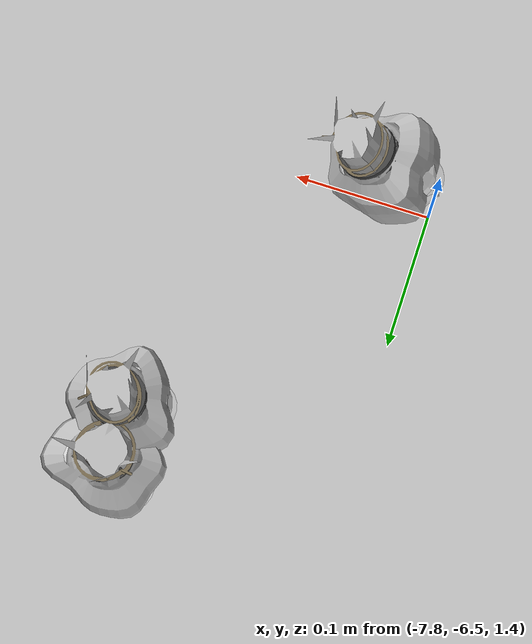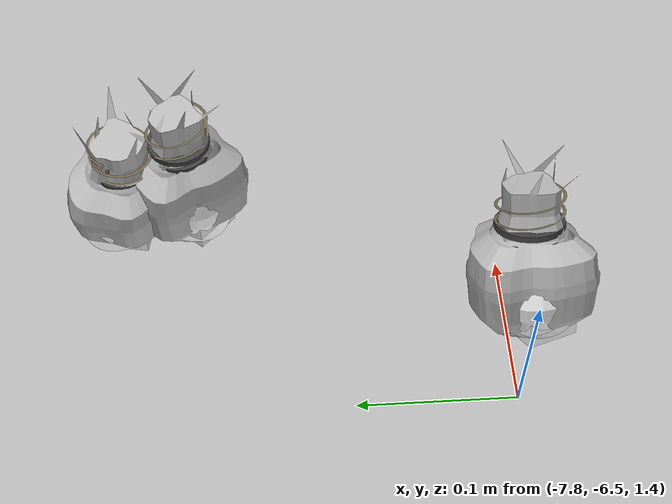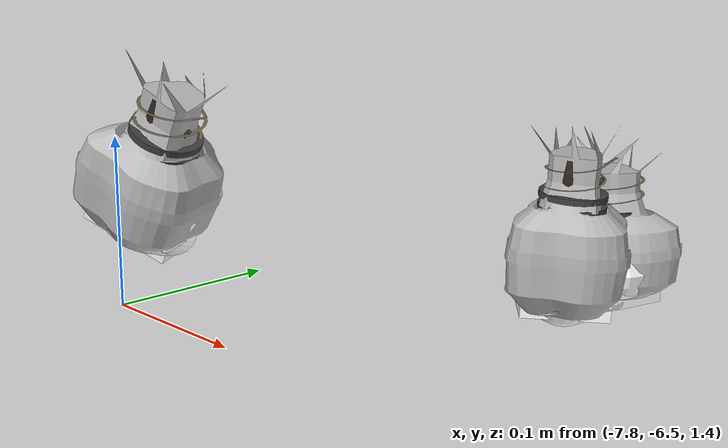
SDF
<sdf version="1.11">
 <world name="peach_orchard">
  <model name="ground">
   <static>true</static>
   <link name="link">
    <visual name="soil">
     <geometry><plane><normal>0 0 1</normal><size>32 22</size></plane></geometry>
     <material>
      <ambient>1 1 1 1</ambient>
      <diffuse>1 1 1 1</diffuse>
      <specular>0.1 0.1 0.1 1</specular>
      <pbr>
       <metal>
        <albedo_map>textures/soil_albedo.png</albedo_map>
        <normal_map type="tangent">textures/soil_normal.png</normal_map>
        <roughness>0.95</roughness>
        <metalness>0</metalness>
       </metal>
      </pbr>
     </material>
    </visual>
    <collision name="c_soil">
     <geometry><plane><normal>0 0 1</normal><size>32 22</size></plane></geometry>
    </collision>
   </link>
  </model>
  <model name="peach_tree_r0_t0_00">
   <pose>-7.63848 -6.29787 1.38853 0 0.0690625 0.471395</pose>
   <static>true</static>
   <link name="bag">
    <visual name="bag_mesh">
     <pose>0 0 0.0492364 0 0 0</pose>
     <geometry>
      <mesh><uri>model://peach_sim/meshes/bagged_peach.glb</uri><scale>0.923249 1.09589 1.11901</scale></mesh>
     </geometry>
    </visual>
    <visual name="body">
     <pose>0 0 0.0312364 0 0 0</pose>
     <geometry><ellipsoid><radii>0.0346218 0.028493 0.0337353</radii></ellipsoid></geometry>
     <material>
      <ambient>1 1 1 1</ambient>
      <diffuse>1 1 1 1</diffuse>
      <specular>0.1 0.1 0.1 1</specular>
      <pbr>
       <metal>
        <albedo_map>textures/paper_bag_albedo.png</albedo_map>
        <normal_map type="tangent">textures/paper_bag_normal.png</normal_map>
        <roughness>0.72</roughness>
        <metalness>0</metalness>
       </metal>
      </pbr>
     </material>
    </visual>
    <visual name="bottom_fold">
     <pose>0 0 0.012 0 0 0.35</pose>
     <geometry><box><size>0.0536639 0.032767 0.022</size></box></geometry>
     <material>
      <ambient>1 1 1 1</ambient>
      <diffuse>1 1 1 1</diffuse>
      <specular>0.1 0.1 0.1 1</specular>
      <pbr>
       <metal>
        <albedo_map>textures/paper_bag_albedo.png</albedo_map>
        <normal_map type="tangent">textures/paper_bag_normal.png</normal_map>
        <roughness>0.8</roughness>
        <metalness>0</metalness>
       </metal>
      </pbr>
     </material>
    </visual>
    <visual name="fruit">
     <pose>0 0 0.0190603 0 0 0</pose>
     <geometry><sphere><radius>0.0260627</radius></sphere></geometry>
     <material>
      <ambient>1 1 1 1</ambient>
      <diffuse>1 1 1 1</diffuse>
      <specular>0.1 0.1 0.1 1</specular>
      <pbr>
       <metal>
        <albedo_map>textures/fruit_skin_albedo.png</albedo_map>
        <normal_map type="tangent">textures/fruit_skin_normal.png</normal_map>
        <roughness>0.55</roughness>
        <metalness>0</metalness>
       </metal>
      </pbr>
     </material>
    </visual>
    <visual name="neck">
     <pose>0 0 0.0714728 0 0 0</pose>
     <geometry><cylinder><radius>0.013</radius><length>0.018</length></cylinder></geometry>
     <material>
      <ambient>1 1 1 1</ambient>
      <diffuse>1 1 1 1</diffuse>
      <specular>0.1 0.1 0.1 1</specular>
      <pbr>
       <metal>
        <albedo_map>textures/paper_bag_albedo.png</albedo_map>
        <normal_map type="tangent">textures/paper_bag_normal.png</normal_map>
        <roughness>0.75</roughness>
        <metalness>0</metalness>
       </metal>
      </pbr>
     </material>
    </visual>
    <visual name="gather">
     <pose>0 0 0.0524728 0 0 0</pose>
     <geometry><cylinder><radius>0.019</radius><length>0.02</length></cylinder></geometry>
     <material>
      <ambient>1 1 1 1</ambient>
      <diffuse>1 1 1 1</diffuse>
      <specular>0.1 0.1 0.1 1</specular>
      <pbr>
       <metal>
        <albedo_map>textures/paper_bag_albedo.png</albedo_map>
        <normal_map type="tangent">textures/paper_bag_normal.png</normal_map>
        <roughness>0.8</roughness>
        <metalness>0</metalness>
       </metal>
      </pbr>
     </material>
    </visual>
    <visual name="inner_paper">
     <pose>0 0 0.0764728 0 0 0</pose>
     <geometry><cylinder><radius>0.01</radius><length>0.008</length></cylinder></geometry>
     <material>
      <ambient>0.180392 0.14902 0.133333 1</ambient>
      <diffuse>0.180392 0.14902 0.133333 1</diffuse>
      <specular>0.1 0.1 0.1 1</specular>
     </material>
    </visual>
    <visual name="wire_0">
     <pose>0 0 0.0664728 0 0 0</pose>
     <geometry><cylinder><radius>0.0205</radius><length>0.0035</length></cylinder></geometry>
     <material>
      <ambient>0.25 0.25 0.25 1</ambient>
      <diffuse>0.25 0.25 0.25 1</diffuse>
      <specular>0.1 0.1 0.1 1</specular>
     </material>
    </visual>
    <visual name="wire_1">
     <pose>0 0 0.0734728 0 0 0</pose>
     <geometry><cylinder><radius>0.0205</radius><length>0.0035</length></cylinder></geometry>
     <material>
      <ambient>0.25 0.25 0.25 1</ambient>
      <diffuse>0.25 0.25 0.25 1</diffuse>
      <specular>0.1 0.1 0.1 1</specular>
     </material>
    </visual>
    <visual name="wire_tail">
     <pose>0.01 0 0.0744728 0 0.521618 0</pose>
     <geometry><cylinder><radius>0.0012</radius><length>0.026</length></cylinder></geometry>
     <material>
      <ambient>0.25 0.25 0.25 1</ambient>
      <diffuse>0.25 0.25 0.25 1</diffuse>
      <specular>0.1 0.1 0.1 1</specular>
     </material>
    </visual>
    <collision name="c_body">
     <pose>0 0 0.0312364 0 0 0</pose>
     <geometry><cylinder><radius>0.0346218</radius><length>0.0624728</length></cylinder></geometry>
    </collision>
   </link>
  </model>
  <model name="peach_tree_r0_t0_01">
   <pose>-7.63671 -6.25862 1.39125 0 0.0242443 2.61156</pose>
   <static>true</static>
   <link name="bag">
    <visual name="bag_mesh">
     <pose>0 0 0.0396384 0 0 0</pose>
     <geometry>
      <mesh><uri>model://peach_sim/meshes/bagged_peach.glb</uri><scale>1.03772 1.12838 0.900873</scale></mesh>
     </geometry>
    </visual>
    <visual name="body">
     <pose>0 0 0.0216384 0 0 0</pose>
     <geometry><ellipsoid><radii>0.0389145 0.0293378 0.0233695</radii></ellipsoid></geometry>
     <material>
      <ambient>1 1 1 1</ambient>
      <diffuse>1 1 1 1</diffuse>
      <specular>0.1 0.1 0.1 1</specular>
      <pbr>
       <metal>
        <albedo_map>textures/paper_bag_albedo.png</albedo_map>
        <normal_map type="tangent">textures/paper_bag_normal.png</normal_map>
        <roughness>0.72</roughness>
        <metalness>0</metalness>
       </metal>
      </pbr>
     </material>
    </visual>
    <visual name="bottom_fold">
     <pose>0 0 0.012 0 0 0.35</pose>
     <geometry><box><size>0.0603175 0.0337385 0.022</size></box></geometry>
     <material>
      <ambient>1 1 1 1</ambient>
      <diffuse>1 1 1 1</diffuse>
      <specular>0.1 0.1 0.1 1</specular>
      <pbr>
       <metal>
        <albedo_map>textures/paper_bag_albedo.png</albedo_map>
        <normal_map type="tangent">textures/paper_bag_normal.png</normal_map>
        <roughness>0.8</roughness>
        <metalness>0</metalness>
       </metal>
      </pbr>
     </material>
    </visual>
    <visual name="fruit">
     <pose>0 0 0.0184015 0 0 0</pose>
     <geometry><sphere><radius>0.0253775</radius></sphere></geometry>
     <material>
      <ambient>1 1 1 1</ambient>
      <diffuse>1 1 1 1</diffuse>
      <specular>0.1 0.1 0.1 1</specular>
      <pbr>
       <metal>
        <albedo_map>textures/fruit_skin_albedo.png</albedo_map>
        <normal_map type="tangent">textures/fruit_skin_normal.png</normal_map>
        <roughness>0.55</roughness>
        <metalness>0</metalness>
       </metal>
      </pbr>
     </material>
    </visual>
    <visual name="neck">
     <pose>0 0 0.0522768 0 0 0</pose>
     <geometry><cylinder><radius>0.013</radius><length>0.018</length></cylinder></geometry>
     <material>
      <ambient>1 1 1 1</ambient>
      <diffuse>1 1 1 1</diffuse>
      <specular>0.1 0.1 0.1 1</specular>
      <pbr>
       <metal>
        <albedo_map>textures/paper_bag_albedo.png</albedo_map>
        <normal_map type="tangent">textures/paper_bag_normal.png</normal_map>
        <roughness>0.75</roughness>
        <metalness>0</metalness>
       </metal>
      </pbr>
     </material>
    </visual>
    <visual name="gather">
     <pose>0 0 0.0332768 0 0 0</pose>
     <geometry><cylinder><radius>0.019</radius><length>0.02</length></cylinder></geometry>
     <material>
      <ambient>1 1 1 1</ambient>
      <diffuse>1 1 1 1</diffuse>
      <specular>0.1 0.1 0.1 1</specular>
      <pbr>
       <metal>
        <albedo_map>textures/paper_bag_albedo.png</albedo_map>
        <normal_map type="tangent">textures/paper_bag_normal.png</normal_map>
        <roughness>0.8</roughness>
        <metalness>0</metalness>
       </metal>
      </pbr>
     </material>
    </visual>
    <visual name="inner_paper">
     <pose>0 0 0.0572768 0 0 0</pose>
     <geometry><cylinder><radius>0.01</radius><length>0.008</length></cylinder></geometry>
     <material>
      <ambient>0.180392 0.14902 0.133333 1</ambient>
      <diffuse>0.180392 0.14902 0.133333 1</diffuse>
      <specular>0.1 0.1 0.1 1</specular>
     </material>
    </visual>
    <visual name="wire_0">
     <pose>0 0 0.0472768 0 0 0</pose>
     <geometry><cylinder><radius>0.0205</radius><length>0.0035</length></cylinder></geometry>
     <material>
      <ambient>0.25 0.25 0.25 1</ambient>
      <diffuse>0.25 0.25 0.25 1</diffuse>
      <specular>0.1 0.1 0.1 1</specular>
     </material>
    </visual>
    <visual name="wire_1">
     <pose>0 0 0.0542768 0 0 0</pose>
     <geometry><cylinder><radius>0.0205</radius><length>0.0035</length></cylinder></geometry>
     <material>
      <ambient>0.25 0.25 0.25 1</ambient>
      <diffuse>0.25 0.25 0.25 1</diffuse>
      <specular>0.1 0.1 0.1 1</specular>
     </material>
    </visual>
    <visual name="wire_tail">
     <pose>0.01 0 0.0552768 0 0.521618 0</pose>
     <geometry><cylinder><radius>0.0012</radius><length>0.026</length></cylinder></geometry>
     <material>
      <ambient>0.25 0.25 0.25 1</ambient>
      <diffuse>0.25 0.25 0.25 1</diffuse>
      <specular>0.1 0.1 0.1 1</specular>
     </material>
    </visual>
    <collision name="c_body">
     <pose>0 0 0.0216384 0 0 0</pose>
     <geometry><cylinder><radius>0.0389145</radius><length>0.0432768</length></cylinder></geometry>
    </collision>
   </link>
  </model>
  <model name="peach_tree_r0_t0_08">
   <pose>-7.77529 -6.50277 1.45 0 0.445973 0.0605916</pose>
   <static>true</static>
   <link name="bag">
    <visual name="bag_mesh">
     <pose>0 0 0.0454449 0 0 0</pose>
     <geometry>
      <mesh><uri>model://peach_sim/meshes/bagged_peach.glb</uri><scale>0.927256 1.06211 1.03284</scale></mesh>
     </geometry>
    </visual>
    <visual name="body">
     <pose>0 0 0.0274449 0 0 0</pose>
     <geometry><ellipsoid><radii>0.0347721 0.0276148 0.0296405</radii></ellipsoid></geometry>
     <material>
      <ambient>1 1 1 1</ambient>
      <diffuse>1 1 1 1</diffuse>
      <specular>0.1 0.1 0.1 1</specular>
      <pbr>
       <metal>
        <albedo_map>textures/paper_bag_albedo.png</albedo_map>
        <normal_map type="tangent">textures/paper_bag_normal.png</normal_map>
        <roughness>0.72</roughness>
        <metalness>0</metalness>
       </metal>
      </pbr>
     </material>
    </visual>
    <visual name="bottom_fold">
     <pose>0 0 0.012 0 0 0.35</pose>
     <geometry><box><size>0.0538967 0.031757 0.022</size></box></geometry>
     <material>
      <ambient>1 1 1 1</ambient>
      <diffuse>1 1 1 1</diffuse>
      <specular>0.1 0.1 0.1 1</specular>
      <pbr>
       <metal>
        <albedo_map>textures/paper_bag_albedo.png</albedo_map>
        <normal_map type="tangent">textures/paper_bag_normal.png</normal_map>
        <roughness>0.8</roughness>
        <metalness>0</metalness>
       </metal>
      </pbr>
     </material>
    </visual>
    <visual name="fruit">
     <pose>0 0 0.0202554 0 0 0</pose>
     <geometry><sphere><radius>0.0273056</radius></sphere></geometry>
     <material>
      <ambient>1 1 1 1</ambient>
      <diffuse>1 1 1 1</diffuse>
      <specular>0.1 0.1 0.1 1</specular>
      <pbr>
       <metal>
        <albedo_map>textures/fruit_skin_albedo.png</albedo_map>
        <normal_map type="tangent">textures/fruit_skin_normal.png</normal_map>
        <roughness>0.55</roughness>
        <metalness>0</metalness>
       </metal>
      </pbr>
     </material>
    </visual>
    <visual name="neck">
     <pose>0 0 0.0638898 0 0 0</pose>
     <geometry><cylinder><radius>0.013</radius><length>0.018</length></cylinder></geometry>
     <material>
      <ambient>1 1 1 1</ambient>
      <diffuse>1 1 1 1</diffuse>
      <specular>0.1 0.1 0.1 1</specular>
      <pbr>
       <metal>
        <albedo_map>textures/paper_bag_albedo.png</albedo_map>
        <normal_map type="tangent">textures/paper_bag_normal.png</normal_map>
        <roughness>0.75</roughness>
        <metalness>0</metalness>
       </metal>
      </pbr>
     </material>
    </visual>
    <visual name="gather">
     <pose>0 0 0.0448898 0 0 0</pose>
     <geometry><cylinder><radius>0.019</radius><length>0.02</length></cylinder></geometry>
     <material>
      <ambient>1 1 1 1</ambient>
      <diffuse>1 1 1 1</diffuse>
      <specular>0.1 0.1 0.1 1</specular>
      <pbr>
       <metal>
        <albedo_map>textures/paper_bag_albedo.png</albedo_map>
        <normal_map type="tangent">textures/paper_bag_normal.png</normal_map>
        <roughness>0.8</roughness>
        <metalness>0</metalness>
       </metal>
      </pbr>
     </material>
    </visual>
    <visual name="inner_paper">
     <pose>0 0 0.0688898 0 0 0</pose>
     <geometry><cylinder><radius>0.01</radius><length>0.008</length></cylinder></geometry>
     <material>
      <ambient>0.180392 0.14902 0.133333 1</ambient>
      <diffuse>0.180392 0.14902 0.133333 1</diffuse>
      <specular>0.1 0.1 0.1 1</specular>
     </material>
    </visual>
    <visual name="wire_0">
     <pose>0 0 0.0588898 0 0 0</pose>
     <geometry><cylinder><radius>0.0205</radius><length>0.0035</length></cylinder></geometry>
     <material>
      <ambient>0.25 0.25 0.25 1</ambient>
      <diffuse>0.25 0.25 0.25 1</diffuse>
      <specular>0.1 0.1 0.1 1</specular>
     </material>
    </visual>
    <visual name="wire_1">
     <pose>0 0 0.0658898 0 0 0</pose>
     <geometry><cylinder><radius>0.0205</radius><length>0.0035</length></cylinder></geometry>
     <material>
      <ambient>0.25 0.25 0.25 1</ambient>
      <diffuse>0.25 0.25 0.25 1</diffuse>
      <specular>0.1 0.1 0.1 1</specular>
     </material>
    </visual>
    <visual name="wire_tail">
     <pose>0.01 0 0.0668898 0 0.521618 0</pose>
     <geometry><cylinder><radius>0.0012</radius><length>0.026</length></cylinder></geometry>
     <material>
      <ambient>0.25 0.25 0.25 1</ambient>
      <diffuse>0.25 0.25 0.25 1</diffuse>
      <specular>0.1 0.1 0.1 1</specular>
     </material>
    </visual>
    <collision name="c_body">
     <pose>0 0 0.0274449 0 0 0</pose>
     <geometry><cylinder><radius>0.0347721</radius><length>0.0548898</length></cylinder></geometry>
    </collision>
   </link>
  </model>
 </world>
</sdf>
